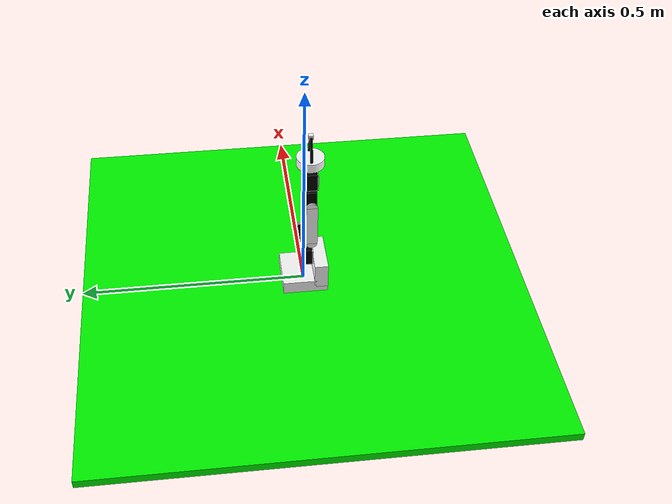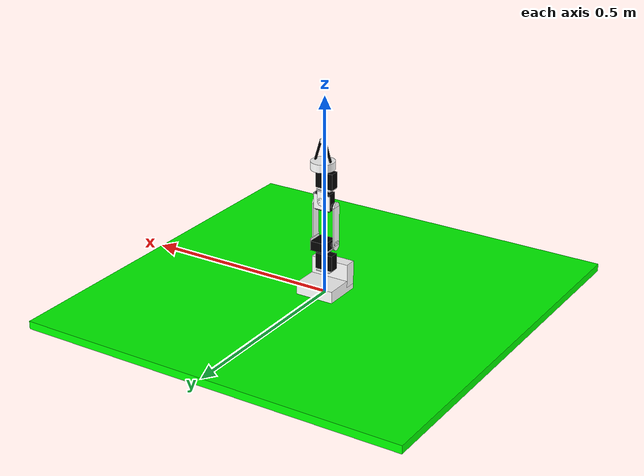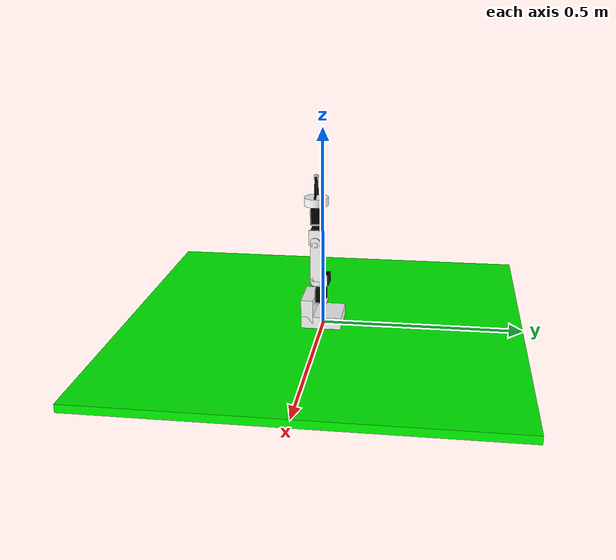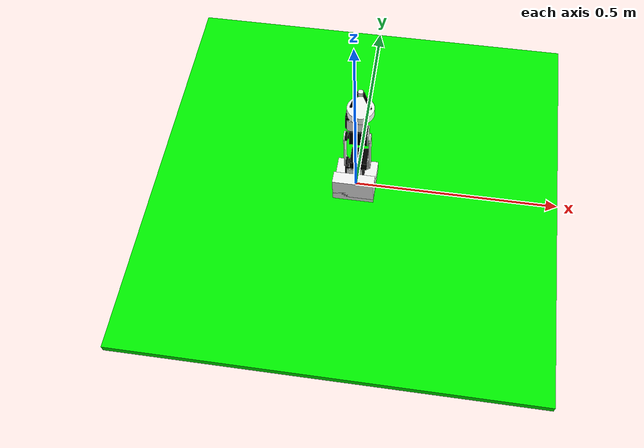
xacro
<?xml version="1.0"?>

<robot name="five_dof_arm" xmlns:xacro="http://www.ros.org/wiki/xacro">

  <material name="Black">
    <color rgba="0.0 0.0 0.0 1.0"/>
  </material>

  <material name="White">
    <color rgba="1.0 1.0 1.0 1.0"/>
  </material>

  <material name="Blue">
    <color rgba="0.0 0.0 1.0 0.0"/>
  </material>

  <material name="Green">
    <color rgba="0 1.0 0 1.0"/>
  </material>

  <material name="Red">
    <color rgba="1.0 0 0 0"/>
  </material>

  <property name="deg_to_rad" value="0.01745329251994329577" />
  <property name="M_PI" value="3.14159"/>

<!-- Macros (no use of the new feature letting you put more than one visual property to a link) -->

  <xacro:macro name="inertial_matrix" params="mass">
      <inertial>
      	<mass value="${mass}" />
        <inertia ixx="1.0" ixy="0.0" ixz="0.0" iyy="0.5" iyz="0.0" izz="1.0" />
      </inertial>
   </xacro:macro>

   <xacro:macro name="transmission_block" params="joint_name">
	  <transmission name="tran1">
	    <type>transmission_interface/SimpleTransmission</type>
	    <joint name="${joint_name}">
	      <hardwareInterface>PositionJointInterface</hardwareInterface>
	    </joint>
	    <actuator name="motor1">
	      <hardwareInterface>PositionJointInterface</hardwareInterface>
	      <mechanicalReduction>1</mechanicalReduction>
	    </actuator>
	  </transmission>
   </xacro:macro>

  <xacro:macro name="servo_motor" params="joint_name pX pY pZ rR pP yY">

    <link name="${joint_name}_support_1">
      <visual>
        <origin xyz="${pX} ${pY} ${pZ}" rpy="${rR} ${pP} ${yY}"/>
        <geometry>
          <box size="0.0375 0.0020 0.035"/>
        </geometry>
        <material name="White"/>
      </visual>
    <xacro:inertial_matrix mass="1"/>
    </link>

    <joint name="${joint_name}_support_2" type="fixed">
      <parent link="${joint_name}_support_1"/>
      <child link="${joint_name}_support_3"/>
      <origin xyz="${pX} ${pY-0.001} ${pZ-0.0175}" rpy="0 0 0"/>
    </joint>

    <link name="${joint_name}_support_3">
      <visual>
        <origin xyz="0 0.015 0" rpy="0 0 0"/>
        <geometry>
          <box size="0.0375 0.03 0.002"/>
        </geometry>
        <material name="White"/>
      </visual>
      <xacro:inertial_matrix mass="1"/>
    </link>

    <joint name="${joint_name}_support_X" type="fixed">
      <parent link="${joint_name}_support_1"/>
      <child link="${joint_name}"/>
      <origin xyz="${pX} ${pY+0.002} ${pZ}" rpy="0 0 0"/>
    </joint>

    <link name="${joint_name}">
      <collision>
        <origin xyz="0 0.01175 0.006"  rpy="0 0 0"/>
        <geometry>
          <box size="0.05 0.0335 0.055" />
        </geometry>
      </collision>
      <visual>
        <origin xyz="0 0.01175 0.006" rpy="0 0 0"/>
        <geometry>
          <box size="0.045 0.0235 0.04"/>
        </geometry>
        <material name="Black"/>
      </visual>
      <xacro:inertial_matrix mass="1"/>
    </link>

  <gazebo reference="${joint_name}">
    <material>Gazebo/Black</material>
  </gazebo>

    <joint name="${joint_name}_1" type="revolute">
      <parent link="${joint_name}"/>
      <child link="${joint_name}_2"/>
      <origin xyz="0.01 0.01175 0.026" rpy="0 0 0"/>
      <axis xyz="0 0 1" />
      <limit effort="300" velocity="1" lower="0" upper="${M_PI}"/>
      <dynamics damping="50" friction="1"/>
    </joint>
    <xacro:transmission_block joint_name="${joint_name}_1"/>

    <link name="${joint_name}_2">
      <visual>
        <origin xyz="0 0 0.0025" rpy="0 0 0"/>
        <geometry>
          <cylinder length="0.005" radius="0.005"/>
        </geometry>
        <material name="Black"/>
      </visual>
      <xacro:inertial_matrix mass="1"/>
    </link>

  <gazebo reference="${joint_name}_2">
    <material>Gazebo/Black</material>
  </gazebo>

    <joint name="${joint_name}_3" type="fixed">
      <parent link="${joint_name}_2"/>
      <child link="${joint_name}_4"/>
      <origin xyz="0 0 0.0025" rpy="0 0 0"/>
    </joint>

   <link name="${joint_name}_4">
      <visual>
        <origin xyz="0 0 0.0025" rpy="0 0 0"/>
        <geometry>
          <cylinder length="0.005" radius="0.01"/>
        </geometry>
        <material name="Black"/>
      </visual>
      <xacro:inertial_matrix mass="1"/>
    </link>

  <gazebo reference="${joint_name}_4">
    <material>Gazebo/Black</material>
  </gazebo>

  </xacro:macro>

<!-- ALWAYS HAVE A BASE_LINK NAMED EXACTLY THIS WAY OR IT WON'T COMPILE THE TF -->

  <joint name="bottom_joint" type="fixed">
    <origin xyz="0 0 0" rpy="0 0 0" />
    <parent link="map"/>
    <child link="base_link"/>
  </joint>

  <link name="map">
    <visual>
      <origin xyz=" 0 0 -0.01"  rpy="0 0 0"/>
      <geometry>
        <box size="1 1 0.02" />
      </geometry>
      <material name="Green" />
    </visual>
    <collision>
      <origin xyz=" 0 0 -0.01"  rpy="0 0 0"/>
      <geometry>
        <box size="1 1 0.02" />
      </geometry>
      </collision>
  </link>

  <gazebo reference="bottom_link">
    <material>Gazebo/Gray</material>
  </gazebo>

  <link name="base_link">
    <visual>
      <origin xyz="0 0 0.017" rpy="0 0 0" />
      <geometry>
        <box size="0.1 0.1 0.03" />
      </geometry>
      <material name="White" />
    </visual>
    <xacro:inertial_matrix mass="1"/>
    <collision>
      <origin xyz="0 0 0.017"  rpy="0 0 0"/>
      <geometry>
        <box size="0.1 0.1 0.03" />
      </geometry>
    </collision>
  </link>

  <joint name="base_joint" type="fixed">
    <parent link="base_link"/>
    <child link="base_link_2"/>
    <origin xyz="0 -0.035 0.015"/>
  </joint>

  <link name="base_link_2">
    <visual>
      <origin xyz="0 0 0.03" rpy="0 0 0"/>
      <geometry>
        <box size="0.1 0.03 0.06"/>
      </geometry>
      <material name="White"/>
    </visual>
    <xacro:inertial_matrix mass="1"/>
    <collision>
      <origin xyz="0 0 0.03"  rpy="0 0 0"/>
      <geometry>
        <box size="0.1 0.03 0.06" />
      </geometry>
    </collision>
  </link>

  <joint name="base_joint_2" type="fixed">
    <parent link="base_link_2"/>
    <child link="servo_1_support_1"/>
    <origin xyz="0 0.015 0.035"/>
  </joint>

  <xacro:servo_motor joint_name="servo_1" pX="0" pY="0.001" pZ="0.025" rR="0" pP="0" yY="0"/>

<!-- From now on, we use more than one visual property per link up to a revolute joint -->

  <joint name="servo_2_1" type="fixed">
    <parent link="servo_1_4"/>
    <child link="servo_2"/>
    <origin xyz="0 0 0.005" rpy="0 0 0"/>
  </joint>

  <link name="servo_2">
    <visual>
      <origin xyz="0 0 0.001" rpy="0 0 0"/>
      <geometry>
        <box size="0.045 0.0375 0.002"/>
      </geometry>
      <material name="White"/>
    </visual>
    <visual>
      <origin xyz="0.0225 0 0.015" rpy="0 0 0"/>
      <geometry>
        <box size="0.002 0.0375 0.03"/>
      </geometry>
      <material name="White"/>
    </visual>
    <visual>
      <origin xyz="0 0 0.01375" rpy="0 0 0"/>
      <geometry>
        <box size="0.04 0.045 0.0235"/>
      </geometry>
      <material name="Black"/>
    </visual>
    <visual>
      <origin xyz="-0.0225 -0.01 0.01375" rpy="0 ${M_PI/2} 0"/>
      <geometry>
        <cylinder length="0.005" radius="0.005"/>
      </geometry>
      <material name="Black"/>
    </visual>
    <visual>
      <origin xyz="-0.0275 -0.01 0.01375" rpy="0 ${M_PI/2} 0"/>
      <geometry>
        <cylinder length="0.005" radius="0.01"/>
      </geometry>
      <material name="Black"/>
    </visual>
    <xacro:inertial_matrix mass="1"/>
    <collision>
      <origin xyz="-0.005 0 0.01375"  rpy="0 0 0"/>
      <geometry>
        <box size="0.055 0.055 0.0335" />
      </geometry>
     </collision>
  </link>

  <gazebo reference="servo_2">
    <material>Gazebo/Black</material>
  </gazebo>

  <joint name="servo_2_2" type="revolute">
    <parent link="servo_2"/>
    <child link="bicep"/>
    <origin xyz="-0.03 -0.01 0.01375" rpy="0 0 0"/>
    <axis xyz="1 0 0" />
    <limit effort="300" velocity="1" lower="${-M_PI/2}" upper="${M_PI/2}"/>
    <dynamics damping="50" friction="1"/>
  </joint>

  <xacro:transmission_block joint_name="servo_2_2"/>

  <link name="bicep">
    <visual>
      <origin xyz="-0.0015 0 0" rpy="0 ${M_PI/2} 0"/>
      <geometry>
        <cylinder length="0.003" radius="0.0125"/>
      </geometry>
      <material name="White"/>
    </visual>
    <visual>
      <origin xyz="0.0565 0 0" rpy="0 ${M_PI/2} 0"/>
      <geometry>
        <cylinder length="0.003" radius="0.0125"/>
      </geometry>
      <material name="White"/>
    </visual>
    <visual>
      <origin xyz="-0.0015 0 0.05" rpy="0 0 0"/>
      <geometry>
        <box size="0.003 0.025 0.1"/>
      </geometry>
      <material name="White"/>
    </visual>
    <visual>
      <origin xyz="0.0565 0 0.05" rpy="0 0 0"/>
      <geometry>
        <box size="0.003 0.025 0.1"/>
      </geometry>
      <material name="White"/>
    </visual>
    <visual>
      <origin xyz="-0.0015 0 0.1" rpy="0 ${M_PI/2} 0"/>
      <geometry>
        <cylinder length="0.003" radius="0.0125"/>
      </geometry>
      <material name="White"/>
    </visual>
    <visual>
      <origin xyz="0.0565 0 0.1" rpy="0 ${M_PI/2} 0"/>
      <geometry>
        <cylinder length="0.003" radius="0.0125"/>
      </geometry>
      <material name="White"/>
    </visual>
    <xacro:inertial_matrix mass="1"/>
     <collision>
      <origin xyz="-0.0015 0 0.05" rpy="0 0 0"/>
      <geometry>
        <box size="0.003 0.025 0.1"/>
      </geometry>
      <material name="White"/>
    </collision>
    <collision>
      <origin xyz="0.0565 0 0.05" rpy="0 0 0"/>
      <geometry>
        <box size="0.003 0.025 0.1"/>
      </geometry>
      <material name="White"/>
    </collision>
  </link>

  <joint name="servo_3_1" type="revolute">
    <parent link="bicep"/>
    <child link="servo_3"/>
    <origin xyz="0 0 0.1" rpy="0 0 0"/>
    <axis xyz="1 0 0" />
    <limit effort="300" velocity="1" lower="${-M_PI/2}" upper="${M_PI/2}"/>
    <dynamics damping="50" friction="1"/>
  </joint>

  <xacro:transmission_block joint_name="servo_3_1"/>

  <link name="servo_3">
    <visual>
      <origin xyz="0.03 0.01375 0.01" rpy="0 0 0"/>
      <geometry>
        <box size="0.045 0.002 0.0375"/>
      </geometry>
      <material name="White"/>
    </visual>
    <visual>
      <origin xyz="0.0525 -0.00125 0.012" rpy="0 0 0"/>
      <geometry>
        <box size="0.002 0.03 0.0375"/>
      </geometry>
      <material name="White"/>
    </visual>
    <visual>
      <origin xyz="0.03 0 0.01" rpy="${-M_PI/2} 0 0"/>
      <geometry>
        <box size="0.04 0.045 0.0235"/>
      </geometry>
      <material name="Black"/>
    </visual>
    <visual>
      <origin xyz="0.0075 0 0" rpy="0 ${M_PI/2} 0"/>
      <geometry>
        <cylinder length="0.005" radius="0.005"/>
      </geometry>
      <material name="Black"/>
    </visual>
    <visual>
      <origin xyz="0.0025 0 0" rpy="0 ${M_PI/2} 0"/>
      <geometry>
        <cylinder length="0.005" radius="0.01"/>
      </geometry>
      <material name="Black"/>
    </visual>
    <visual>
      <origin xyz="0.03 0.01675 0.0125" rpy="${M_PI/2} 0 0"/>
      <geometry>
        <cylinder length="0.003" radius="0.01"/>
      </geometry>
      <material name="White"/>
    </visual>
    <visual>
      <origin xyz="0.03 0.01675 0.024" rpy="0 0 0"/>
      <geometry>
        <box size="0.02 0.003 0.03"/>
      </geometry>
      <material name="White"/>
    </visual>
    <visual>
      <origin xyz="0.03 0.00475 0.04" rpy="0 0 0"/>
      <geometry>
        <box size="0.02 0.027 0.003"/>
      </geometry>
      <material name="White"/>
    </visual>
    <visual>
      <origin xyz="0.03 -0.00125 0.04" rpy="0 0 0"/>
      <geometry>
        <cylinder length="0.003" radius="0.01"/>
      </geometry>
      <material name="White"/>
    </visual>
    <xacro:inertial_matrix mass="1"/>
    <collision>
      <origin xyz="0.03 0 0.01"  rpy="0 0 0"/>
      <geometry>
        <box size="0.06 0.03 0.05" />
      </geometry>
    </collision>
  </link>

  <gazebo reference="servo_3">
    <material>Gazebo/Black</material>
  </gazebo>

  <joint name="useless_joint" type="fixed">
    <parent link="servo_3"/>
    <child link="servo_4_support_1"/>
    <origin xyz="0.03 -0.00325 0.0415" rpy="0 0 0"/>
  </joint>

  <xacro:servo_motor joint_name="servo_4" pX="-0.005" pY="-0.01" pZ="0.018" rR="0" pP="0" yY="0"/>

  <joint name="claw_to_wrist" type="fixed">
    <parent link="servo_4_4"/>
    <child link="claw_palm"/>
    <origin xyz="0 0 0.0025" rpy="0 0 0"/>
  </joint>

  <link name="claw_palm">
    <visual>
      <origin xyz="0 0 0.01" rpy="0 0 0"/>
      <geometry>
        <cylinder length="0.02" radius="0.03"/>
      </geometry>
      <material name="White"/>
    </visual>
    <xacro:inertial_matrix mass="1"/>
    <collision>
      <origin xyz="0 0 0.01"  rpy="0 0 0"/>
      <geometry>
        <cylinder length="0.02" radius="0.03"/>
      </geometry>
    </collision>
  </link>

  <joint name="claw_joint_1" type="revolute">
    <parent link="claw_palm"/>
    <child link="claw_1"/>
    <origin xyz="0.01 0 0.01" rpy="0 -0.30 0"/>
    <axis xyz="0 1 0" />
    <limit effort="100" velocity="1" lower="0.0" upper="1.0"/>
    <dynamics damping="50" friction="1"/>
  </joint>

<joint name="claw_joint_2" type="revolute">
    <parent link="claw_palm"/>
    <child link="claw_2"/>
    <origin xyz="-0.01 0 0.01" rpy="0 0.30 0"/>
    <axis xyz="0 -1 0" />
    <limit effort="100" velocity="1" lower="0.0" upper="1.0"/>
    <mimic joint="claw_joint_1" multiplier="1.0" offset="0.0" />
    <dynamics damping="50" friction="1"/>
  </joint>

  <link name="claw_1">
    <visual>
      <origin xyz="0.0135 0 0.03" rpy="0 0 0"/>
      <geometry>
        <cylinder length="0.06" radius="0.003"/>
      </geometry>
      <material name="Black"/>
    </visual>
    <xacro:inertial_matrix mass="1"/>
    <collision>
      <origin xyz="0.0135 0 0.02"  rpy="0 0 0"/>
      <geometry>
        <cylinder length="0.04" radius="0.003"/>
      </geometry>
    </collision>
  </link>

  <gazebo reference="claw_1">
    <material>Gazebo/Black</material>
  </gazebo>

  <link name="claw_2">
    <visual>
      <origin xyz="-0.0135 0 0.03" rpy="0 0 0"/>
      <geometry>
        <cylinder length="0.06" radius="0.003"/>
      </geometry>
      <material name="Black"/>
    </visual>
    <xacro:inertial_matrix mass="1"/>
    <collision>
      <origin xyz="-0.0135 0 0.02"  rpy="0 0 0"/>
      <geometry>
        <cylinder length="0.04" radius="0.003"/>
      </geometry>
    </collision>
  </link>

  <gazebo reference="claw_2">
    <material>Gazebo/Black</material>
  </gazebo>

  <gazebo>
    <plugin name="gazebo_ros_control" filename="libgazebo_ros_control.so">
      <robotNamespace>/five_dof_arm</robotNamespace>
    </plugin>
  </gazebo>

  <link name="grasping_frame">
    <inertial>
      <origin xyz="0 0 0" rpy="0 0 0"/>
      <mass value="0.0001"/>
      <cuboid_inertia mass="0.0001" x="0.001" y="0.001" z="0.001"/>
      <inertia  ixx="1.0" ixy="0.0"  ixz="0.0"  iyy="100.0"  iyz="0.0"  izz="1.0" />
    </inertial>
    <visual>
      <origin xyz="0 0 0.01"/>
      <geometry>
        <box size="0.01 0.01 0.01" />
      </geometry>
      <material name="White" />
    </visual>
    </link>

  <joint name="grasping_frame_joint" type="fixed">
    <parent link="claw_palm"/>
    <child link="grasping_frame"/>
    <origin xyz="0 0 0.06" rpy="0 0 0"/>
  </joint>

</robot>
